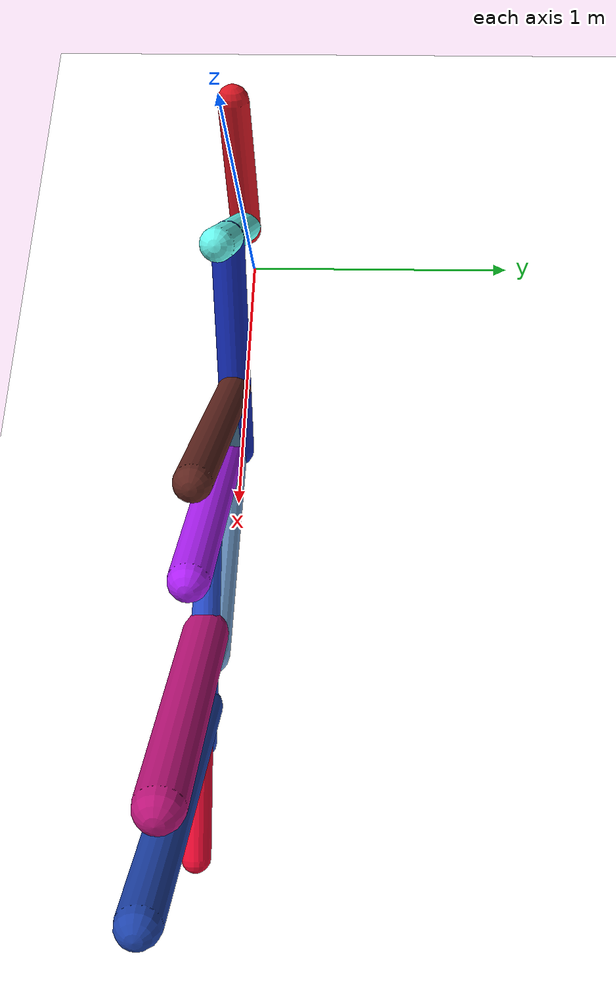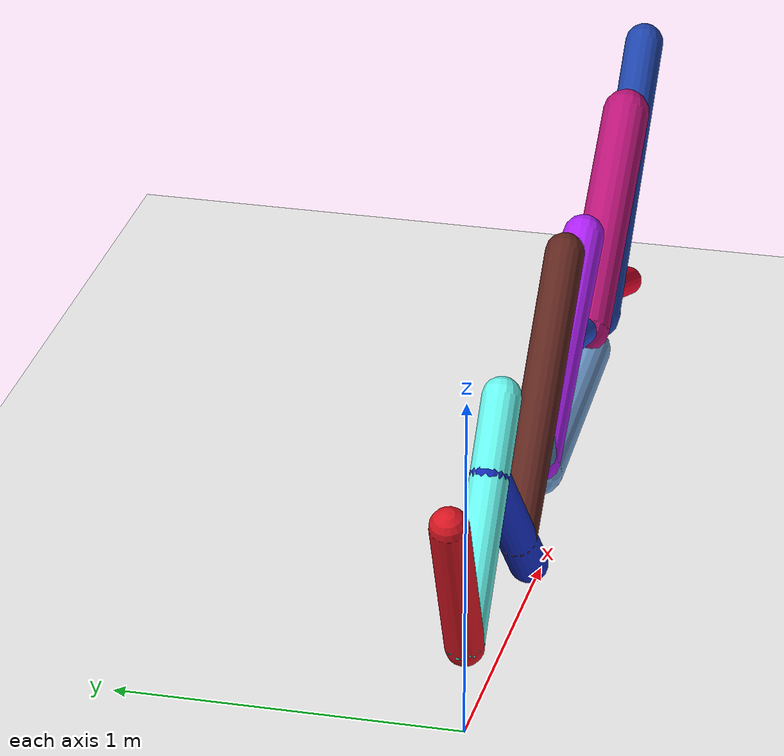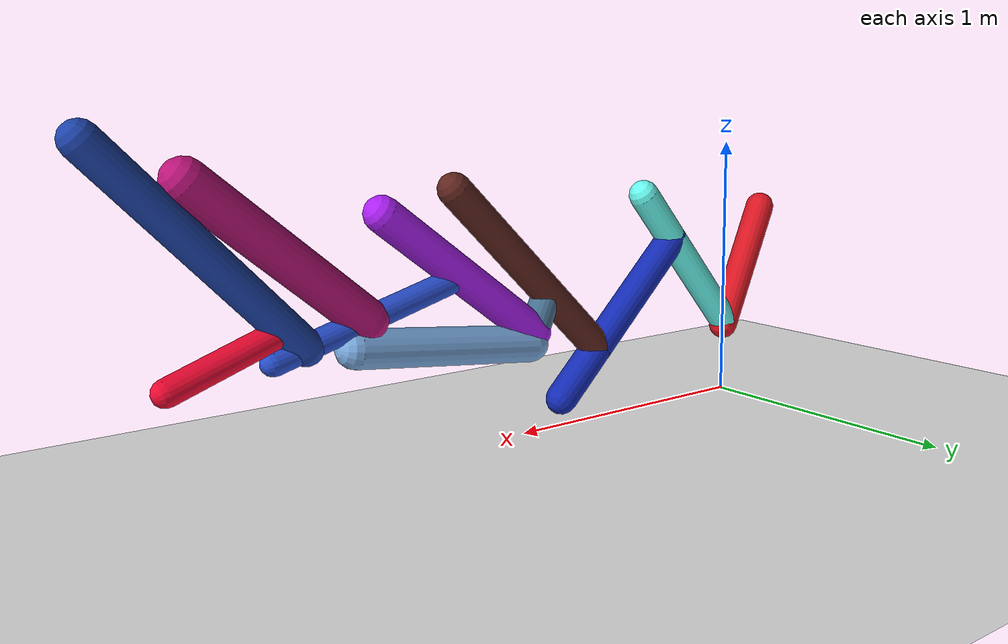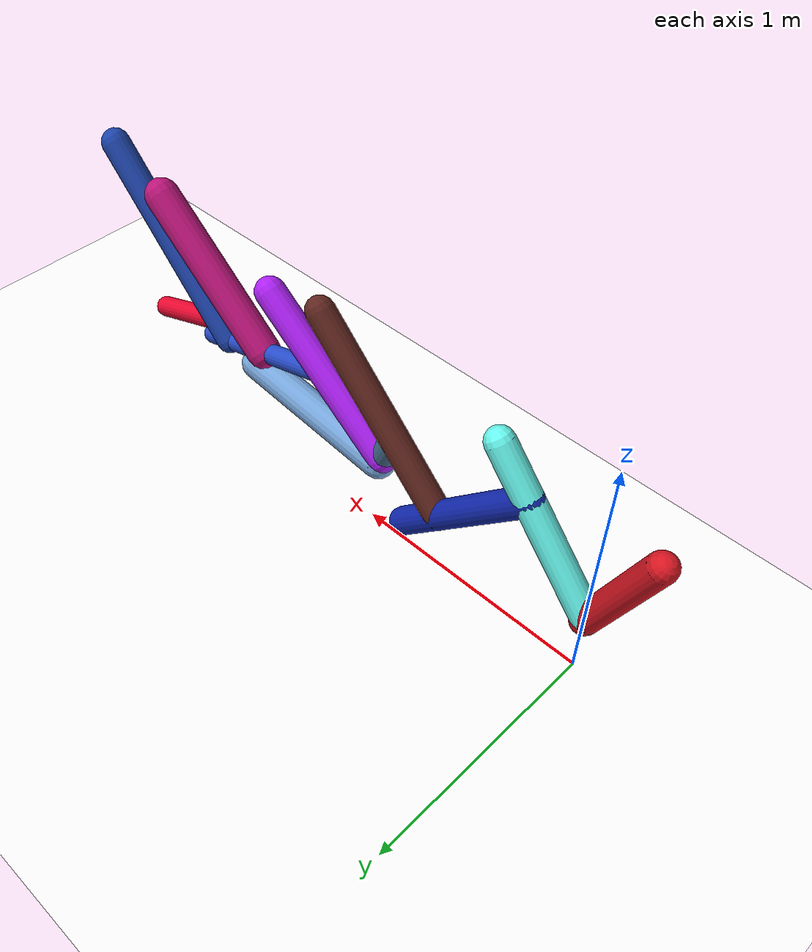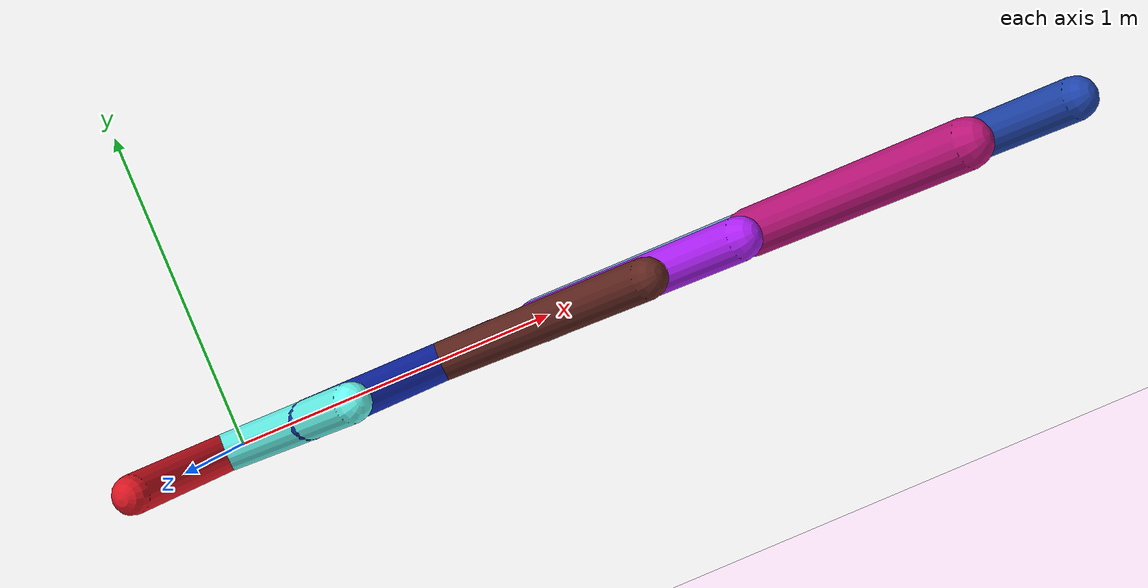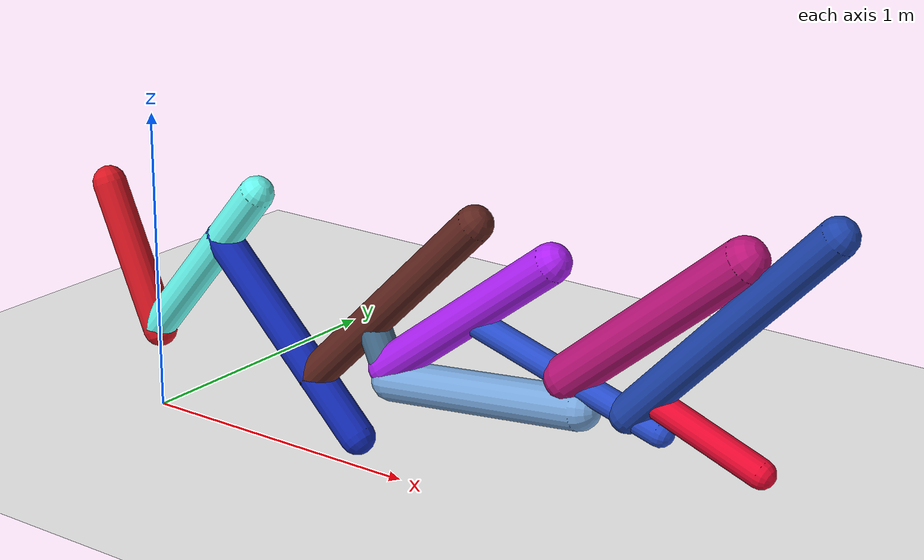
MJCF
<mujoco model="morphology">
  <option timestep="0.01"/>
  <default>
    <default class="/"/>
    <default class="0/"/>
    <default class="0/1/"/>
    <default class="0/1/2/"/>
    <default class="0/1/2/3/"/>
    <default class="0/1/2/3/4/"/>
    <default class="0/1/2/3/4/5/"/>
    <default class="0/1/2/3/4/6/"/>
    <default class="0/1/2/3/4/6/7/"/>
    <default class="0/1/2/3/4/6/7/8/"/>
    <default class="0/1/2/3/4/6/7/9/"/>
    <default class="0/1/2/3/4/6/7/9/10/"/>
  </default>
  <asset>
    <texture name="texplane" type="2d" builtin="checker" rgb1="0.10000000000000001 0.20000000000000001 0.29999999999999999" rgb2="0.20000000000000001 0.29999999999999999 0.40000000000000002" width="300" height="300"/>
    <material name="MatPlane" class="/" texture="texplane" texrepeat="20 20" specular="1" shininess="1" reflectance="0.5"/>
  </asset>
  <worldbody>
    <light name="//unnamed_light_0" class="/" directional="true" pos="0 0 1.5" dir="0 0 -1.3" cutoff="100" exponent="1" diffuse="1 1 1" specular="0.10000000000000001 0.10000000000000001 0.10000000000000001"/>
    <geom name="ground" class="/" type="plane" size="15 15 0.5" material="MatPlane" rgba="1 1 1 1"/>
    <site name="body" class="/" size="9.9999999999999995e-07 9.9999999999999995e-07 9.9999999999999995e-07" pos="0 0 0.2655503064393997"/>
    <body pos="0 0 0.2655503064393997" name="0/">
      <joint name="0/rootx/" class="/" type="slide" axis="1 0 0" limited="false" stiffness="0" armature="0" damping="0"/>
      <joint name="0/rootz/" class="/" type="slide" axis="0 0 1" limited="false" stiffness="0" armature="0" damping="0"/>
      <joint name="0/rooty/" class="/" type="hinge" axis="0 1 0" limited="false" stiffness="0" armature="0" damping="0"/>
      <geom name="0/geom" class="0/" type="capsule" contype="1" conaffinity="1" condim="3" size="0.05559091210967116" rgba="0.84999864605613684 0.085769879168850705 0.13323185665898141 1" friction="0.59999999999999998 0.10000000000000001 0.10000000000000001" fromto="0 0 0 -0.20353642395621907 0 0.46700880786743415"/>
      <site name="0/end0" class="0/" size="0.0050000000000000001" pos="-0.20353642395621907 0 0.46700880786743415"/>
      <site name="0/attach1" class="0/" size="9.9999999999999995e-07 9.9999999999999995e-07 9.9999999999999995e-07" pos="-0.0063295837435310724 0 0.014523058334754719"/>
      <body pos="-0.0063295837435310724 0 0.014523058334754719" name="0/1/">
        <joint name="0/1/joint/" class="0/" type="hinge" axis="0 1 0" limited="true" range="-43.622563429126821 43.622563429126821"/>
        <geom name="0/1/geom" class="0/1/" type="capsule" contype="1" conaffinity="1" condim="3" size="0.056012604966118595" rgba="0.40485113320221722 0.97321422538380653 0.9370013504540613 1" friction="0.59999999999999998 0.10000000000000001 0.10000000000000001" fromto="0 0 0 0.44651134081668964 0 0.53580261914261285"/>
        <site name="0/1/end1" class="0/1/" size="0.0050000000000000001" pos="0.44651134081668964 0 0.53580261914261285"/>
        <site name="0/1/attach2" class="0/1/" size="9.9999999999999995e-07 9.9999999999999995e-07 9.9999999999999995e-07" pos="0.29977013682197673 0 0.35971678604215868"/>
        <body pos="0.29977013682197673 0 0.35971678604215868" name="0/1/2/">
          <joint name="0/1/2/joint/" class="0/1/" type="hinge" axis="0 1 0" limited="true" range="-62.056243008854672 62.056243008854672"/>
          <geom name="0/1/2/geom" class="0/1/2/" type="capsule" contype="1" conaffinity="1" condim="3" size="0.057164587283926045" rgba="0.073148345982581464 0.16453503711319128 0.70314085299851026 1" friction="0.59999999999999998 0.10000000000000001 0.10000000000000001" fromto="0 0 0 0.53987145109455348 0 -0.53979014660756608"/>
          <site name="0/1/2/end2" class="0/1/2/" size="0.0050000000000000001" pos="0.53987145109455348 0 -0.53979014660756608"/>
          <site name="0/1/2/attach3" class="0/1/2/" size="9.9999999999999995e-07 9.9999999999999995e-07 9.9999999999999995e-07" pos="0.37279018387034901 0 -0.37273404177468522"/>
          <body pos="0.37279018387034901 0 -0.37273404177468522" name="0/1/2/3/">
            <joint name="0/1/2/3/joint/" class="0/1/2/" type="hinge" axis="0 1 0" limited="true" range="-33.245585384753312 33.245585384753312"/>
            <geom name="0/1/2/3/geom" class="0/1/2/3/" type="capsule" contype="1" conaffinity="1" condim="3" size="0.057534179579511555" rgba="0.37538383686521026 0.14770828535362146 0.12244667467059223 1" friction="0.59999999999999998 0.10000000000000001 0.10000000000000001" fromto="0 0 0 0.61168396465316377 0 0.61488425756474463"/>
            <site name="0/1/2/3/end3" class="0/1/2/3/" size="0.0050000000000000001" pos="0.61168396465316377 0 0.61488425756474463"/>
            <site name="0/1/2/3/attach4" class="0/1/2/3/" size="9.9999999999999995e-07 9.9999999999999995e-07 9.9999999999999995e-07" pos="0.22939826804268454 0 0.23059846568324588"/>
            <body pos="0.22939826804268454 0 0.23059846568324588" name="0/1/2/3/4/">
              <joint name="0/1/2/3/4/joint/" class="0/1/2/3/" type="hinge" axis="0 1 0" limited="true" range="-69.859434510156689 69.859434510156689"/>
              <geom name="0/1/2/3/4/geom" class="0/1/2/3/4/" type="capsule" contype="1" conaffinity="1" condim="3" size="0.053137667631138003" rgba="0.27618527393383041 0.43507233126901701 0.56134184257189523 1" friction="0.59999999999999998 0.10000000000000001 0.10000000000000001" fromto="0 0 0 0.082394615095922608 0 -0.18245159043742265"/>
              <site name="0/1/2/3/4/end4" class="0/1/2/3/4/" size="0.0050000000000000001" pos="0.082394615095922608 0 -0.18245159043742265"/>
              <site name="0/1/2/3/4/attach5" class="0/1/2/3/4/" size="9.9999999999999995e-07 9.9999999999999995e-07 9.9999999999999995e-07" pos="0.078266384559632751 0 -0.1733101893135561"/>
              <body pos="0.078266384559632751 0 -0.1733101893135561" name="0/1/2/3/4/5/">
                <joint name="0/1/2/3/4/5/joint/" class="0/1/2/3/4/" type="hinge" axis="0 1 0" limited="true" range="-46.125869359844245 46.125869359844245"/>
                <geom name="0/1/2/3/4/5/geom" class="0/1/2/3/4/5/" type="capsule" contype="1" conaffinity="1" condim="3" size="0.06518622075937705" rgba="0.46806131573465604 0.65386587966538268 0.86238998004959355 1" friction="0.59999999999999998 0.10000000000000001 0.10000000000000001" fromto="0 0 0 0.67897090512126246 0 0.077778886379991752"/>
                <site name="0/1/2/3/4/5/end5" class="0/1/2/3/4/5/" size="0.0050000000000000001" pos="0.67897090512126246 0 0.077778886379991752"/>
              </body>
              <site name="0/1/2/3/4/attach6" class="0/1/2/3/4/" size="9.9999999999999995e-07 9.9999999999999995e-07 9.9999999999999995e-07" pos="0.060497778449198798 0 -0.13396404465433781"/>
              <body pos="0.060497778449198798 0 -0.13396404465433781" name="0/1/2/3/4/6/">
                <joint name="0/1/2/3/4/6/joint/" class="0/1/2/3/4/" type="hinge" axis="0 1 0" limited="true" range="-33.19783907052345 33.19783907052345"/>
                <geom name="0/1/2/3/4/6/geom" class="0/1/2/3/4/6/" type="capsule" contype="1" conaffinity="1" condim="3" size="0.060858993604330211" rgba="0.68292972136655039 0.12427670137235414 0.96419637633776389 1" friction="0.59999999999999998 0.10000000000000001 0.10000000000000001" fromto="0 0 0 0.59078862292731071 0 0.45576706934765943"/>
                <site name="0/1/2/3/4/6/end6" class="0/1/2/3/4/6/" size="0.0050000000000000001" pos="0.59078862292731071 0 0.45576706934765943"/>
                <site name="0/1/2/3/4/6/attach7" class="0/1/2/3/4/6/" size="9.9999999999999995e-07 9.9999999999999995e-07 9.9999999999999995e-07" pos="0.29577512598818961 0 0.22817731609255779"/>
                <body pos="0.29577512598818961 0 0.22817731609255779" name="0/1/2/3/4/6/7/">
                  <joint name="0/1/2/3/4/6/7/joint/" class="0/1/2/3/4/6/" type="hinge" axis="0 1 0" limited="true" range="-60.108343446533283 60.108343446533283"/>
                  <geom name="0/1/2/3/4/6/7/geom" class="0/1/2/3/4/6/7/" type="capsule" contype="1" conaffinity="1" condim="3" size="0.042232977311862777" rgba="0.15305419407328813 0.29966685043525521 0.79303751681887968 1" friction="0.59999999999999998 0.10000000000000001 0.10000000000000001" fromto="0 0 0 0.67149361262726615 0 -0.19223118612873558"/>
                  <site name="0/1/2/3/4/6/7/end7" class="0/1/2/3/4/6/7/" size="0.0050000000000000001" pos="0.67149361262726615 0 -0.19223118612873558"/>
                  <site name="0/1/2/3/4/6/7/attach8" class="0/1/2/3/4/6/7/" size="9.9999999999999995e-07 9.9999999999999995e-07 9.9999999999999995e-07" pos="0.35769147000079965 0 -0.10239778049020978"/>
                  <body pos="0.35769147000079965 0 -0.10239778049020978" name="0/1/2/3/4/6/7/8/">
                    <joint name="0/1/2/3/4/6/7/8/joint/" class="0/1/2/3/4/6/7/" type="hinge" axis="0 1 0" limited="true" range="-32.119180800049421 32.119180800049421"/>
                    <geom name="0/1/2/3/4/6/7/8/geom" class="0/1/2/3/4/6/7/8/" type="capsule" contype="1" conaffinity="1" condim="3" size="0.069733486923444457" rgba="0.73127144152376655 0.077150692270861798 0.47416588179164065 1" friction="0.59999999999999998 0.10000000000000001 0.10000000000000001" fromto="0 0 0 0.55432072138587207 0 0.46543970721298988"/>
                    <site name="0/1/2/3/4/6/7/8/end8" class="0/1/2/3/4/6/7/8/" size="0.0050000000000000001" pos="0.55432072138587207 0 0.46543970721298988"/>
                  </body>
                  <site name="0/1/2/3/4/6/7/attach9" class="0/1/2/3/4/6/7/" size="9.9999999999999995e-07 9.9999999999999995e-07 9.9999999999999995e-07" pos="0.56659037204937912 0 -0.1622001121381198"/>
                  <body pos="0.56659037204937912 0 -0.1622001121381198" name="0/1/2/3/4/6/7/9/">
                    <joint name="0/1/2/3/4/6/7/9/joint/" class="0/1/2/3/4/6/7/" type="hinge" axis="0 1 0" limited="true" range="-68.047415768114064 68.047415768114064"/>
                    <geom name="0/1/2/3/4/6/7/9/geom" class="0/1/2/3/4/6/7/9/" type="capsule" contype="1" conaffinity="1" condim="3" size="0.057557869807208381" rgba="0.11748265765882093 0.26627148037418336 0.67154276188924478 1" friction="0.59999999999999998 0.10000000000000001 0.10000000000000001" fromto="0 0 0 0.61412617585430418 0 0.64489067617704299"/>
                    <site name="0/1/2/3/4/6/7/9/end9" class="0/1/2/3/4/6/7/9/" size="0.0050000000000000001" pos="0.61412617585430418 0 0.64489067617704299"/>
                    <site name="0/1/2/3/4/6/7/9/attach10" class="0/1/2/3/4/6/7/9/" size="9.9999999999999995e-07 9.9999999999999995e-07 9.9999999999999995e-07" pos="0.061476516592666411 0 0.064556167630052966"/>
                    <body pos="0.061476516592666411 0 0.064556167630052966" name="0/1/2/3/4/6/7/9/10/">
                      <joint name="0/1/2/3/4/6/7/9/10/joint/" class="0/1/2/3/4/6/7/9/" type="hinge" axis="0 1 0" limited="true" range="-40.571461013263679 40.571461013263679"/>
                      <geom name="0/1/2/3/4/6/7/9/10/geom" class="0/1/2/3/4/6/7/9/10/" type="capsule" contype="1" conaffinity="1" condim="3" size="0.043120513048313554" rgba="0.91407194740696096 0.030730019939077202 0.18899362887535043 1" friction="0.59999999999999998 0.10000000000000001 0.10000000000000001" fromto="0 0 0 0.36523388012304858 0 -0.13226245301211692"/>
                      <site name="0/1/2/3/4/6/7/9/10/end10" class="0/1/2/3/4/6/7/9/10/" size="0.0050000000000000001" pos="0.36523388012304858 0 -0.13226245301211692"/>
                    </body>
                  </body>
                </body>
              </body>
            </body>
          </body>
        </body>
      </body>
      <camera name="0/side" class="0/" mode="trackcom" pos="0.40000000000000002 -4 0.20000000000000001" quat="0.70699999999999996 0.70699999999999996 0 0"/>
    </body>
  </worldbody>
  <actuator>
    <motor name="0/1/motor" class="0/1/" ctrllimited="true" ctrlrange="-1 1" gear="59" joint="0/1/joint/"/>
    <motor name="0/1/2/motor" class="0/1/2/" ctrllimited="true" ctrlrange="-1 1" gear="65" joint="0/1/2/joint/"/>
    <motor name="0/1/2/3/motor" class="0/1/2/3/" ctrllimited="true" ctrlrange="-1 1" gear="57" joint="0/1/2/3/joint/"/>
    <motor name="0/1/2/3/4/motor" class="0/1/2/3/4/" ctrllimited="true" ctrlrange="-1 1" gear="57" joint="0/1/2/3/4/joint/"/>
    <motor name="0/1/2/3/4/5/motor" class="0/1/2/3/4/5/" ctrllimited="true" ctrlrange="-1 1" gear="67" joint="0/1/2/3/4/5/joint/"/>
    <motor name="0/1/2/3/4/6/motor" class="0/1/2/3/4/6/" ctrllimited="true" ctrlrange="-1 1" gear="84" joint="0/1/2/3/4/6/joint/"/>
    <motor name="0/1/2/3/4/6/7/motor" class="0/1/2/3/4/6/7/" ctrllimited="true" ctrlrange="-1 1" gear="64" joint="0/1/2/3/4/6/7/joint/"/>
    <motor name="0/1/2/3/4/6/7/8/motor" class="0/1/2/3/4/6/7/8/" ctrllimited="true" ctrlrange="-1 1" gear="61" joint="0/1/2/3/4/6/7/8/joint/"/>
    <motor name="0/1/2/3/4/6/7/9/motor" class="0/1/2/3/4/6/7/9/" ctrllimited="true" ctrlrange="-1 1" gear="81" joint="0/1/2/3/4/6/7/9/joint/"/>
    <motor name="0/1/2/3/4/6/7/9/10/motor" class="0/1/2/3/4/6/7/9/10/" ctrllimited="true" ctrlrange="-1 1" gear="60" joint="0/1/2/3/4/6/7/9/10/joint/"/>
  </actuator>
  <sensor>
    <subtreelinvel name="velocity" body="0/"/>
  </sensor>
</mujoco>
